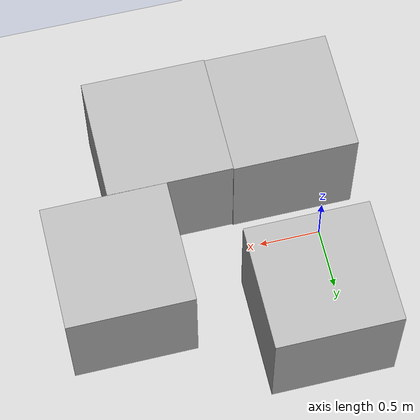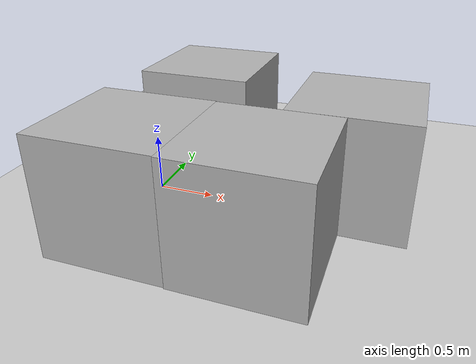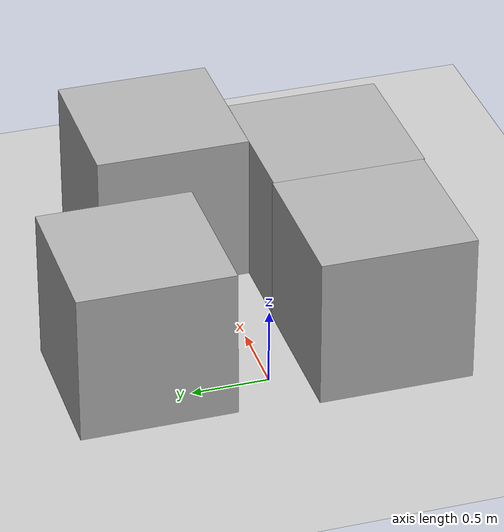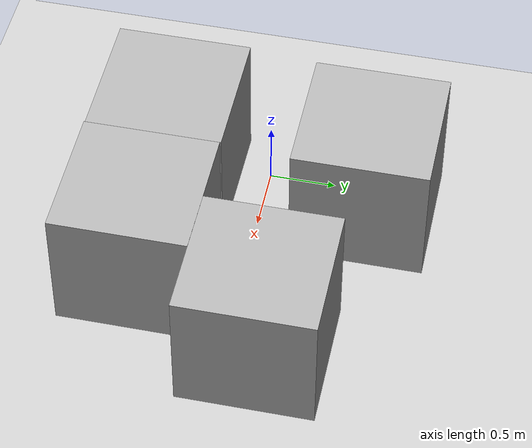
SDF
<?xml version="1.0"?>

<sdf version="1.6">
  <world name="husarion_world">
    <physics name="1ms" type="ignored">
      <max_step_size>0.001</max_step_size>
      <real_time_factor>1.0</real_time_factor>
    </physics>

    <light type="directional" name="sun">
      <cast_shadows>true</cast_shadows>
      <pose>0 0 10 0 0 0</pose>
      <diffuse>0.8 0.8 0.8 1</diffuse>
      <specular>0.2 0.2 0.2 1</specular>
      <attenuation>
        <range>1000</range>
        <constant>0.9</constant>
        <linear>0.01</linear>
        <quadratic>0.001</quadratic>
      </attenuation>
      <direction>-0.5 0.1 -0.9</direction>
    </light>

    <model name="ground_plane">
      <static>true</static>
      <link name="link">
        <collision name="collision">
          <geometry>
            <plane>
              <normal>0 0 1</normal>
              <size>100 100</size>
            </plane>
          </geometry>
        </collision>
        <visual name="visual">
          <geometry>
            <plane>
              <normal>0 0 1</normal>
              <size>100 100</size>
            </plane>
          </geometry>
          <material>
            <ambient>0.8 0.8 0.8 1</ambient>
            <diffuse>0.8 0.8 0.8 1</diffuse>
            <specular>0.8 0.8 0.8 1</specular>
          </material>
        </visual>
      </link>
    </model>

    <model name='box'>
      <pose>0.224581 0.780625 0.5 -0 0 -0</pose>
      <link name='box_link'>
        <inertial>
          <inertia>
            <ixx>0.16666</ixx>
            <ixy>0</ixy>
            <ixz>0</ixz>
            <iyy>0.16666</iyy>
            <iyz>0</iyz>
            <izz>0.16666</izz>
          </inertia>
          <mass>1</mass>
          <pose>0 0 0 0 -0 0</pose>
        </inertial>
        <collision name='box_collision'>
          <geometry>
            <box>
              <size>1 1 1</size>
            </box>
          </geometry>
          <surface>
            <friction>
              <ode/>
            </friction>
            <bounce/>
            <contact/>
          </surface>
        </collision>
        <visual name='box_visual'>
          <geometry>
            <box>
              <size>1 1 1</size>
            </box>
          </geometry>
          <material>
            <ambient>0.3 0.3 0.3 1</ambient>
            <diffuse>0.7 0.7 0.7 1</diffuse>
            <specular>1 1 1 1</specular>
          </material>
        </visual>
        <pose>0 0 0 0 -0 0</pose>
        <enable_wind>false</enable_wind>
      </link>
      <static>false</static>
      <self_collide>false</self_collide>
    </model>
    <model name='box_0'>
      <pose>0.171585 -0.727805 0.5 0 -0 -1e-06</pose>
      <link name='box_link'>
        <inertial>
          <inertia>
            <ixx>0.16666</ixx>
            <ixy>0</ixy>
            <ixz>0</ixz>
            <iyy>0.16666</iyy>
            <iyz>0</iyz>
            <izz>0.16666</izz>
          </inertia>
          <mass>1</mass>
          <pose>0 0 0 0 -0 0</pose>
        </inertial>
        <collision name='box_collision'>
          <geometry>
            <box>
              <size>1 1 1</size>
            </box>
          </geometry>
          <surface>
            <friction>
              <ode/>
            </friction>
            <bounce/>
            <contact/>
          </surface>
        </collision>
        <visual name='box_visual'>
          <geometry>
            <box>
              <size>1 1 1</size>
            </box>
          </geometry>
          <material>
            <ambient>0.3 0.3 0.3 1</ambient>
            <diffuse>0.7 0.7 0.7 1</diffuse>
            <specular>1 1 1 1</specular>
          </material>
        </visual>
        <pose>0 0 0 0 -0 0</pose>
        <enable_wind>false</enable_wind>
      </link>
      <static>false</static>
      <self_collide>false</self_collide>
    </model>
    <model name='box_1'>
      <pose>1.17159 -0.736515 0.5 -1e-06 0 -1.4e-05</pose>
      <link name='box_link'>
        <inertial>
          <inertia>
            <ixx>0.16666</ixx>
            <ixy>0</ixy>
            <ixz>0</ixz>
            <iyy>0.16666</iyy>
            <iyz>0</iyz>
            <izz>0.16666</izz>
          </inertia>
          <mass>1</mass>
          <pose>0 0 0 0 -0 0</pose>
        </inertial>
        <collision name='box_collision'>
          <geometry>
            <box>
              <size>1 1 1</size>
            </box>
          </geometry>
          <surface>
            <friction>
              <ode/>
            </friction>
            <bounce/>
            <contact/>
          </surface>
        </collision>
        <visual name='box_visual'>
          <geometry>
            <box>
              <size>1 1 1</size>
            </box>
          </geometry>
          <material>
            <ambient>0.3 0.3 0.3 1</ambient>
            <diffuse>0.7 0.7 0.7 1</diffuse>
            <specular>1 1 1 1</specular>
          </material>
        </visual>
        <pose>0 0 0 0 -0 0</pose>
        <enable_wind>false</enable_wind>
      </link>
      <static>false</static>
      <self_collide>false</self_collide>
    </model>
    <model name='box_2'>
      <pose>1.69904 0.264205 0.5 -0 0 0.001445</pose>
      <link name='box_link'>
        <inertial>
          <inertia>
            <ixx>0.16666</ixx>
            <ixy>0</ixy>
            <ixz>0</ixz>
            <iyy>0.16666</iyy>
            <iyz>0</iyz>
            <izz>0.16666</izz>
          </inertia>
          <mass>1</mass>
          <pose>0 0 0 0 -0 0</pose>
        </inertial>
        <collision name='box_collision'>
          <geometry>
            <box>
              <size>1 1 1</size>
            </box>
          </geometry>
          <surface>
            <friction>
              <ode/>
            </friction>
            <bounce/>
            <contact/>
          </surface>
        </collision>
        <visual name='box_visual'>
          <geometry>
            <box>
              <size>1 1 1</size>
            </box>
          </geometry>
          <material>
            <ambient>0.3 0.3 0.3 1</ambient>
            <diffuse>0.7 0.7 0.7 1</diffuse>
            <specular>1 1 1 1</specular>
          </material>
        </visual>
        <pose>0 0 0 0 -0 0</pose>
        <enable_wind>false</enable_wind>
      </link>
      <static>false</static>
      <self_collide>false</self_collide>
    </model>

  </world>
</sdf>
